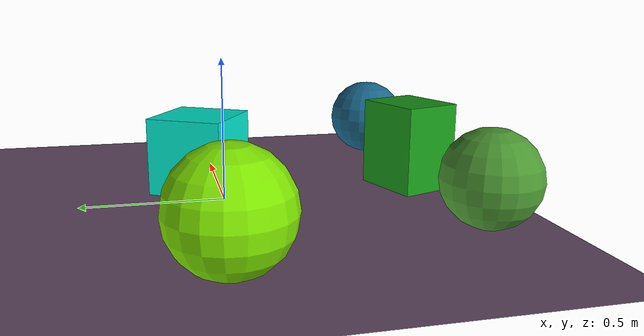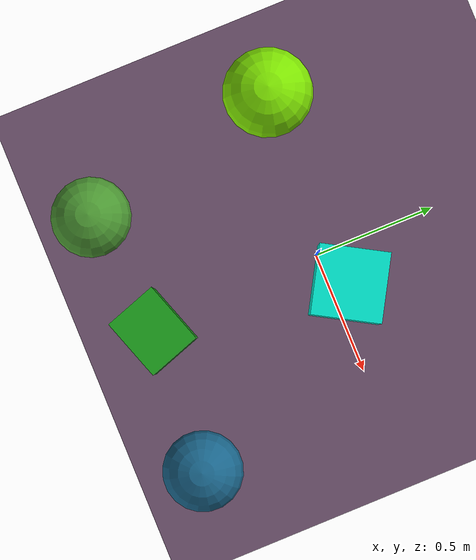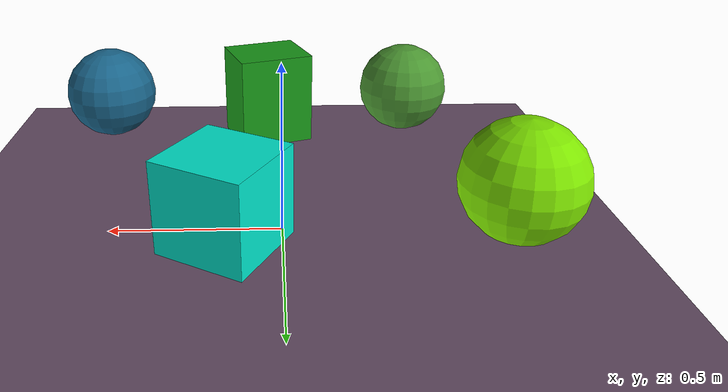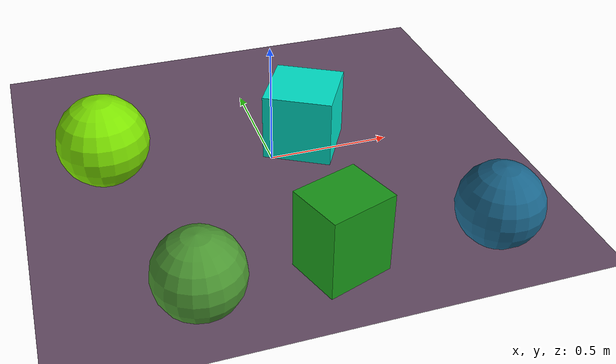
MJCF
<mujoco>
   <asset>
<texture type="skybox" builtin="gradient" rgb1="0.4 0.9 0.8" rgb2="0.8 0.1 0.6" width="500" height="500"/>
<texture name="flat_0" builtin="flat" rgb1="0.5 0.9 0.0" rgb2="0.5 0.9 0.0"  width="500" height="500"/>
<texture name="flat_1" builtin="flat" rgb1="0.0 0.9 0.8" rgb2="0.0 0.9 0.8"  width="500" height="500"/>
<texture name="flat_2" builtin="flat" rgb1="0.1 0.6 0.1" rgb2="0.1 0.6 0.1"  width="500" height="500"/>
<texture name="checker_3" builtin="checker" rgb1="0.5 0.8 0.2" rgb2="0.1 0.4 0.2" width="500" height="500"/>
<texture name="gradient_4" builtin="gradient" rgb1="0.1 0.7 0.4" rgb2="0.1 0.1 0.7" width="500" height="500"/><material name="flat_0_mat" reflectance="0.3701695884532912" texture="flat_0" texuniform="true"/>
<material name="flat_1_mat" reflectance="0.06747947591440351" texture="flat_1" texuniform="true"/>
<material name="flat_2_mat" reflectance="0.8503485786013679" texture="flat_2" texuniform="true"/>
<material name="checker_3_mat" reflectance="0.1324218144873811" texrepeat="9 9" texture="checker_3" texuniform="false" />
<material name="gradient_4_mat" reflectance="0.0019477528766950192" texture="gradient_4" texuniform="true"/>
   </asset>

   <worldbody>
     <geom type="plane" size="1 1 0.1" rgba="0.4 0.3 0.4 1" />
<light pos="-0.32441259377464093 -0.5753921750633424 2" dir="0 0 -1" cutoff="90" diffuse="1 1 1" specular="1 1 1"/>
<geom type="sphere" pos="-0.66 0.06 0.18" size="0.18 0.18 0.18" material="flat_0_mat" euler="0 0 42" />
<geom type="box" pos="0.16 0.07 0.14" size="0.14 0.14 0.14" material="flat_1_mat" euler="0 0 60" />
<geom type="box" pos="0.04 -0.71 0.16" size="0.13 0.11 0.16" material="flat_2_mat" euler="0 0 19" />
<geom type="sphere" pos="-0.47 -0.77 0.16" size="0.16 0.16 0.16" material="checker_3_mat" euler="0 0 53" />
<geom type="sphere" pos="0.62 -0.74 0.16" size="0.16 0.16 0.16" material="gradient_4_mat" euler="0 0 79" /><camera euler="60 0 180" fovy="60" name="camera1" pos="-0.2 -1.5 1"></camera>   </worldbody>
   <visual>
      <headlight diffuse="0.7 0.7 0.7"/>
   </visual>
</mujoco>
